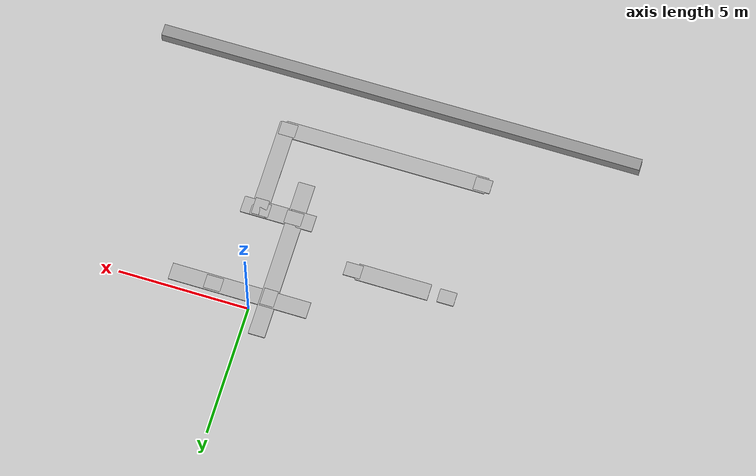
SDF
<sdf version="1.7">
 <world name="default">
  <model name="ground_plane">
   <static>1</static>
   <link name="link">
    <collision name="collision">
     <geometry><plane><normal>0 0 1</normal><size>100 100</size></plane></geometry>
     <surface>
      <contact><collide_bitmask>65535</collide_bitmask></contact>
      <friction><ode><mu>100</mu><mu2>50</mu2></ode></friction>
     </surface>
    </collision>
    <visual name="visual">
     <cast_shadows>0</cast_shadows>
     <geometry><plane><normal>0 0 1</normal><size>100 100</size></plane></geometry>
     <material>
      <script><uri>file://media/materials/scripts/gazebo.material</uri><name>Gazebo/Grey</name></script>
     </material>
    </visual>
   </link>
  </model>
  <model name="unit_box_wall_clone_0">
   <link name="unit_box::link">
    <inertial>
     <mass>1</mass>
     <inertia>
      <ixx>0.166667</ixx>
      <ixy>0</ixy>
      <ixz>0</ixz>
      <iyy>0.166667</iyy>
      <iyz>0</iyz>
      <izz>0.166667</izz>
     </inertia>
    </inertial>
    <visual name="visual">
     <geometry><box><size>0.446113 18.5982 1</size></box></geometry>
     <material>
      <script><name>Gazebo/Grey</name><uri>file://media/materials/scripts/gazebo.material</uri></script>
      <shader type="pixel"/>
     </material>
    </visual>
    <collision name="collision">
     <geometry><box><size>0.446113 18.5982 1</size></box></geometry>
     <surface>
      <friction>
       <ode><mu>1</mu><mu2>1</mu2><fdir1>0 0 0</fdir1><slip1>0</slip1><slip2>0</slip2></ode>
       <torsional>
        <coefficient>1</coefficient>
        <patch_radius>0</patch_radius>
        <surface_radius>0</surface_radius>
        <use_patch_radius>1</use_patch_radius>
        <ode><slip>0</slip></ode>
       </torsional>
      </friction>
      <bounce><restitution_coefficient>0</restitution_coefficient><threshold>1e+06</threshold></bounce>
      <contact>
       <collide_without_contact>0</collide_without_contact>
       <collide_without_contact_bitmask>1</collide_without_contact_bitmask>
       <collide_bitmask>1</collide_bitmask>
       <ode>
        <soft_cfm>0</soft_cfm>
        <soft_erp>0.2</soft_erp>
        <kp>1e+13</kp>
        <kd>1</kd>
        <max_vel>0.01</max_vel>
        <min_depth>0</min_depth>
       </ode>
       <bullet>
        <split_impulse>1</split_impulse>
        <split_impulse_penetration_threshold>-0.01</split_impulse_penetration_threshold>
        <soft_cfm>0</soft_cfm>
        <soft_erp>0.2</soft_erp>
        <kp>1e+13</kp>
        <kd>1</kd>
       </bullet>
      </contact>
     </surface>
    </collision>
   </link>
   <static>1</static>
   <allow_auto_disable>0</allow_auto_disable>
   <pose>-2.94746 -9.48662 0 0 0 -1.57124</pose>
  </model>
  <model name="wallx_clone_clone_clone">
   <link name="unit_box::link">
    <inertial>
     <mass>0.360824</mass>
     <inertia>
      <ixx>1.11244</ixx>
      <ixy>0</ixy>
      <ixz>0</ixz>
      <iyy>0.0643516</iyy>
      <iyz>0</iyz>
      <izz>1.11666</izz>
     </inertia>
    </inertial>
    <visual name="visual">
     <geometry><box><size>0.636041 5.31244 1</size></box></geometry>
     <material>
      <script>
       <uri>model://wallx/materials/scripts</uri>
       <uri>model://wallx/materials/textures/</uri>
       <name>sofaMat/Diffuse</name>
      </script>
      <shader type="pixel"/>
     </material>
    </visual>
    <collision name="collision">
     <geometry><box><size>0.636041 5.31244 1</size></box></geometry>
     <surface>
      <friction>
       <ode><mu>1</mu><mu2>1</mu2><fdir1>0 0 0</fdir1><slip1>0</slip1><slip2>0</slip2></ode>
       <torsional>
        <coefficient>1</coefficient>
        <patch_radius>0</patch_radius>
        <surface_radius>0</surface_radius>
        <use_patch_radius>1</use_patch_radius>
        <ode><slip>0</slip></ode>
       </torsional>
      </friction>
      <bounce><restitution_coefficient>0</restitution_coefficient><threshold>1e+06</threshold></bounce>
      <contact>
       <collide_without_contact>0</collide_without_contact>
       <collide_without_contact_bitmask>1</collide_without_contact_bitmask>
       <collide_bitmask>1</collide_bitmask>
       <ode>
        <soft_cfm>0</soft_cfm>
        <soft_erp>0.2</soft_erp>
        <kp>1e+13</kp>
        <kd>1</kd>
        <max_vel>0.01</max_vel>
        <min_depth>0</min_depth>
       </ode>
       <bullet>
        <split_impulse>1</split_impulse>
        <split_impulse_penetration_threshold>-0.01</split_impulse_penetration_threshold>
        <soft_cfm>0</soft_cfm>
        <soft_erp>0.2</soft_erp>
        <kp>1e+13</kp>
        <kd>1</kd>
       </bullet>
      </contact>
     </surface>
    </collision>
   </link>
   <static>1</static>
   <allow_auto_disable>0</allow_auto_disable>
   <pose>0.534764 -0.574694 -0.470978 0 0 -1.57156</pose>
  </model>
  <model name="wallx_clone_0_clone_clone">
   <link name="unit_box::link">
    <inertial>
     <mass>0.360824</mass>
     <inertia>
      <ixx>1.11244</ixx>
      <ixy>0</ixy>
      <ixz>0</ixz>
      <iyy>0.0643516</iyy>
      <iyz>0</iyz>
      <izz>1.11666</izz>
     </inertia>
    </inertial>
    <visual name="visual">
     <geometry><box><size>0.63604 6.20586 1</size></box></geometry>
     <material>
      <script>
       <uri>model://wallx/materials/scripts</uri>
       <uri>model://wallx/materials/textures/</uri>
       <name>sofaMat/Diffuse</name>
      </script>
      <shader type="pixel"/>
     </material>
    </visual>
    <collision name="collision">
     <geometry><box><size>0.63604 6.20586 1</size></box></geometry>
     <surface>
      <friction>
       <ode><mu>1</mu><mu2>1</mu2><fdir1>0 0 0</fdir1><slip1>0</slip1><slip2>0</slip2></ode>
       <torsional>
        <coefficient>1</coefficient>
        <patch_radius>0</patch_radius>
        <surface_radius>0</surface_radius>
        <use_patch_radius>1</use_patch_radius>
        <ode><slip>0</slip></ode>
       </torsional>
      </friction>
      <bounce><restitution_coefficient>0</restitution_coefficient><threshold>1e+06</threshold></bounce>
      <contact>
       <collide_without_contact>0</collide_without_contact>
       <collide_without_contact_bitmask>1</collide_without_contact_bitmask>
       <collide_bitmask>1</collide_bitmask>
       <ode>
        <soft_cfm>0</soft_cfm>
        <soft_erp>0.2</soft_erp>
        <kp>1e+13</kp>
        <kd>1</kd>
        <max_vel>0.01</max_vel>
        <min_depth>0</min_depth>
       </ode>
       <bullet>
        <split_impulse>1</split_impulse>
        <split_impulse_penetration_threshold>-0.01</split_impulse_penetration_threshold>
        <soft_cfm>0</soft_cfm>
        <soft_erp>0.2</soft_erp>
        <kp>1e+13</kp>
        <kd>1</kd>
       </bullet>
      </contact>
     </surface>
    </collision>
   </link>
   <static>1</static>
   <allow_auto_disable>0</allow_auto_disable>
   <pose>-0.586172 -2.19734 -0.470978 0 -0 0</pose>
  </model>
  <model name="wallx_clone_clone_clone_clone">
   <link name="unit_box::link">
    <inertial>
     <mass>0.360824</mass>
     <inertia>
      <ixx>1.11244</ixx>
      <ixy>0</ixy>
      <ixz>0</ixz>
      <iyy>0.0643516</iyy>
      <iyz>0</iyz>
      <izz>1.11666</izz>
     </inertia>
    </inertial>
    <visual name="visual">
     <geometry><box><size>0.636041 2.7749 1</size></box></geometry>
     <material>
      <script>
       <uri>model://wallx/materials/scripts</uri>
       <uri>model://wallx/materials/textures/</uri>
       <name>sofaMat/Diffuse</name>
      </script>
      <shader type="pixel"/>
     </material>
    </visual>
    <collision name="collision">
     <geometry><box><size>0.636041 2.7749 1</size></box></geometry>
     <surface>
      <friction>
       <ode><mu>1</mu><mu2>1</mu2><fdir1>0 0 0</fdir1><slip1>0</slip1><slip2>0</slip2></ode>
       <torsional>
        <coefficient>1</coefficient>
        <patch_radius>0</patch_radius>
        <surface_radius>0</surface_radius>
        <use_patch_radius>1</use_patch_radius>
        <ode><slip>0</slip></ode>
       </torsional>
      </friction>
      <bounce><restitution_coefficient>0</restitution_coefficient><threshold>1e+06</threshold></bounce>
      <contact>
       <collide_without_contact>0</collide_without_contact>
       <collide_without_contact_bitmask>1</collide_without_contact_bitmask>
       <collide_bitmask>1</collide_bitmask>
       <ode>
        <soft_cfm>0</soft_cfm>
        <soft_erp>0.2</soft_erp>
        <kp>1e+13</kp>
        <kd>1</kd>
        <max_vel>0.01</max_vel>
        <min_depth>0</min_depth>
       </ode>
       <bullet>
        <split_impulse>1</split_impulse>
        <split_impulse_penetration_threshold>-0.01</split_impulse_penetration_threshold>
        <soft_cfm>0</soft_cfm>
        <soft_erp>0.2</soft_erp>
        <kp>1e+13</kp>
        <kd>1</kd>
       </bullet>
      </contact>
     </surface>
    </collision>
   </link>
   <static>1</static>
   <allow_auto_disable>0</allow_auto_disable>
   <pose>0.07415 -3.86935 -0.470978 0 0 -1.57156</pose>
  </model>
  <model name="wallx_clone_0_clone_clone_clone">
   <link name="unit_box::link">
    <inertial>
     <mass>0.360824</mass>
     <inertia>
      <ixx>1.11244</ixx>
      <ixy>0</ixy>
      <ixz>0</ixz>
      <iyy>0.0643516</iyy>
      <iyz>0</iyz>
      <izz>1.11666</izz>
     </inertia>
    </inertial>
    <visual name="visual">
     <geometry><box><size>0.63604 3.87548 1</size></box></geometry>
     <material>
      <script>
       <uri>model://wallx/materials/scripts</uri>
       <uri>model://wallx/materials/textures/</uri>
       <name>sofaMat/Diffuse</name>
      </script>
      <shader type="pixel"/>
     </material>
    </visual>
    <collision name="collision">
     <geometry><box><size>0.63604 3.87548 1</size></box></geometry>
     <surface>
      <friction>
       <ode><mu>1</mu><mu2>1</mu2><fdir1>0 0 0</fdir1><slip1>0</slip1><slip2>0</slip2></ode>
       <torsional>
        <coefficient>1</coefficient>
        <patch_radius>0</patch_radius>
        <surface_radius>0</surface_radius>
        <use_patch_radius>1</use_patch_radius>
        <ode><slip>0</slip></ode>
       </torsional>
      </friction>
      <bounce><restitution_coefficient>0</restitution_coefficient><threshold>1e+06</threshold></bounce>
      <contact>
       <collide_without_contact>0</collide_without_contact>
       <collide_without_contact_bitmask>1</collide_without_contact_bitmask>
       <collide_bitmask>1</collide_bitmask>
       <ode>
        <soft_cfm>0</soft_cfm>
        <soft_erp>0.2</soft_erp>
        <kp>1e+13</kp>
        <kd>1</kd>
        <max_vel>0.01</max_vel>
        <min_depth>0</min_depth>
       </ode>
       <bullet>
        <split_impulse>1</split_impulse>
        <split_impulse_penetration_threshold>-0.01</split_impulse_penetration_threshold>
        <soft_cfm>0</soft_cfm>
        <soft_erp>0.2</soft_erp>
        <kp>1e+13</kp>
        <kd>1</kd>
       </bullet>
      </contact>
     </surface>
    </collision>
   </link>
   <static>1</static>
   <allow_auto_disable>0</allow_auto_disable>
   <pose>0.786646 -5.4928 -0.470978 0 -0 0</pose>
  </model>
  <model name="wallx_clone_clone_0">
   <link name="unit_box::link">
    <inertial>
     <mass>0.360824</mass>
     <inertia>
      <ixx>1.11244</ixx>
      <ixy>0</ixy>
      <ixz>0</ixz>
      <iyy>0.0643516</iyy>
      <iyz>0</iyz>
      <izz>1.11666</izz>
     </inertia>
    </inertial>
    <visual name="visual">
     <geometry><box><size>0.636041 7.85359 1</size></box></geometry>
     <material>
      <script>
       <uri>model://wallx/materials/scripts</uri>
       <uri>model://wallx/materials/textures/</uri>
       <name>sofaMat/Diffuse</name>
      </script>
      <shader type="pixel"/>
     </material>
    </visual>
    <collision name="collision">
     <geometry><box><size>0.636041 7.85359 1</size></box></geometry>
     <surface>
      <friction>
       <ode><mu>1</mu><mu2>1</mu2><fdir1>0 0 0</fdir1><slip1>0</slip1><slip2>0</slip2></ode>
       <torsional>
        <coefficient>1</coefficient>
        <patch_radius>0</patch_radius>
        <surface_radius>0</surface_radius>
        <use_patch_radius>1</use_patch_radius>
        <ode><slip>0</slip></ode>
       </torsional>
      </friction>
      <bounce><restitution_coefficient>0</restitution_coefficient><threshold>1e+06</threshold></bounce>
      <contact>
       <collide_without_contact>0</collide_without_contact>
       <collide_without_contact_bitmask>1</collide_without_contact_bitmask>
       <collide_bitmask>1</collide_bitmask>
       <ode>
        <soft_cfm>0</soft_cfm>
        <soft_erp>0.2</soft_erp>
        <kp>1e+13</kp>
        <kd>1</kd>
        <max_vel>0.01</max_vel>
        <min_depth>0</min_depth>
       </ode>
       <bullet>
        <split_impulse>1</split_impulse>
        <split_impulse_penetration_threshold>-0.01</split_impulse_penetration_threshold>
        <soft_cfm>0</soft_cfm>
        <soft_erp>0.2</soft_erp>
        <kp>1e+13</kp>
        <kd>1</kd>
       </bullet>
      </contact>
     </surface>
    </collision>
   </link>
   <static>1</static>
   <allow_auto_disable>0</allow_auto_disable>
   <pose>-3.05633 -7.18123 -0.470978 0 0 -1.57156</pose>
  </model>
  <model name="wallx_clone_clone_clone_clone_0">
   <link name="unit_box::link">
    <inertial>
     <mass>0.360824</mass>
     <inertia>
      <ixx>1.11244</ixx>
      <ixy>0</ixy>
      <ixz>0</ixz>
      <iyy>0.0643516</iyy>
      <iyz>0</iyz>
      <izz>1.11666</izz>
     </inertia>
    </inertial>
    <visual name="visual">
     <geometry><box><size>0.636041 2.77489 1</size></box></geometry>
     <material>
      <script>
       <uri>model://wallx/materials/scripts</uri>
       <uri>model://wallx/materials/textures/</uri>
       <name>sofaMat/Diffuse</name>
      </script>
      <shader type="pixel"/>
     </material>
    </visual>
    <collision name="collision">
     <geometry><box><size>0.636041 2.77489 1</size></box></geometry>
     <surface>
      <friction>
       <ode><mu>1</mu><mu2>1</mu2><fdir1>0 0 0</fdir1><slip1>0</slip1><slip2>0</slip2></ode>
       <torsional>
        <coefficient>1</coefficient>
        <patch_radius>0</patch_radius>
        <surface_radius>0</surface_radius>
        <use_patch_radius>1</use_patch_radius>
        <ode><slip>0</slip></ode>
       </torsional>
      </friction>
      <bounce><restitution_coefficient>0</restitution_coefficient><threshold>1e+06</threshold></bounce>
      <contact>
       <collide_without_contact>0</collide_without_contact>
       <collide_without_contact_bitmask>1</collide_without_contact_bitmask>
       <collide_bitmask>1</collide_bitmask>
       <ode>
        <soft_cfm>0</soft_cfm>
        <soft_erp>0.2</soft_erp>
        <kp>1e+13</kp>
        <kd>1</kd>
        <max_vel>0.01</max_vel>
        <min_depth>0</min_depth>
       </ode>
       <bullet>
        <split_impulse>1</split_impulse>
        <split_impulse_penetration_threshold>-0.01</split_impulse_penetration_threshold>
        <soft_cfm>0</soft_cfm>
        <soft_erp>0.2</soft_erp>
        <kp>1e+13</kp>
        <kd>1</kd>
       </bullet>
      </contact>
     </surface>
    </collision>
   </link>
   <static>1</static>
   <allow_auto_disable>0</allow_auto_disable>
   <pose>-4.7728 -2.55069 -0.470978 0 0 -1.57156</pose>
  </model>
  <model name="wally_clone_2">
   <link name="unit_box::link">
    <inertial>
     <mass>0.360824</mass>
     <inertia>
      <ixx>1.11244</ixx>
      <ixy>0</ixy>
      <ixz>0</ixz>
      <iyy>0.0643516</iyy>
      <iyz>0</iyz>
      <izz>1.11666</izz>
     </inertia>
    </inertial>
    <visual name="visual">
     <geometry><box><size>0.526279 0.641561 0.121798</size></box></geometry>
     <material>
      <script>
       <uri>model://wally/materials/scripts</uri>
       <uri>model://wally/materials/textures/</uri>
       <name>sofaMa/Diffuse</name>
      </script>
      <shader type="pixel"/>
     </material>
    </visual>
    <collision name="collision">
     <geometry><box><size>0.526279 0.641561 0.121798</size></box></geometry>
     <surface>
      <friction>
       <ode><mu>1</mu><mu2>1</mu2><fdir1>0 0 0</fdir1><slip1>0</slip1><slip2>0</slip2></ode>
       <torsional>
        <coefficient>1</coefficient>
        <patch_radius>0</patch_radius>
        <surface_radius>0</surface_radius>
        <use_patch_radius>1</use_patch_radius>
        <ode><slip>0</slip></ode>
       </torsional>
      </friction>
      <bounce><restitution_coefficient>0</restitution_coefficient><threshold>1e+06</threshold></bounce>
      <contact>
       <collide_without_contact>0</collide_without_contact>
       <collide_without_contact_bitmask>1</collide_without_contact_bitmask>
       <collide_bitmask>1</collide_bitmask>
       <ode>
        <soft_cfm>0</soft_cfm>
        <soft_erp>0.2</soft_erp>
        <kp>1e+13</kp>
        <kd>1</kd>
        <max_vel>0.01</max_vel>
        <min_depth>0</min_depth>
       </ode>
       <bullet>
        <split_impulse>1</split_impulse>
        <split_impulse_penetration_threshold>-0.01</split_impulse_penetration_threshold>
        <soft_cfm>0</soft_cfm>
        <soft_erp>0.2</soft_erp>
        <kp>1e+13</kp>
        <kd>1</kd>
       </bullet>
      </contact>
     </surface>
    </collision>
   </link>
   <static>1</static>
   <allow_auto_disable>0</allow_auto_disable>
   <pose>-0.589298 -0.630189 -0.031686 0 -0 0</pose>
  </model>
  <model name="wally_clone_3">
   <link name="unit_box::link">
    <inertial>
     <mass>0.360824</mass>
     <inertia>
      <ixx>1.11244</ixx>
      <ixy>0</ixy>
      <ixz>0</ixz>
      <iyy>0.0643516</iyy>
      <iyz>0</iyz>
      <izz>1.11666</izz>
     </inertia>
    </inertial>
    <visual name="visual">
     <geometry><box><size>0.526279 0.641561 0.121798</size></box></geometry>
     <material>
      <script>
       <uri>model://wally/materials/scripts</uri>
       <uri>model://wally/materials/textures/</uri>
       <name>sofaMa/Diffuse</name>
      </script>
      <shader type="pixel"/>
     </material>
    </visual>
    <collision name="collision">
     <geometry><box><size>0.526279 0.641561 0.121798</size></box></geometry>
     <surface>
      <friction>
       <ode><mu>1</mu><mu2>1</mu2><fdir1>0 0 0</fdir1><slip1>0</slip1><slip2>0</slip2></ode>
       <torsional>
        <coefficient>1</coefficient>
        <patch_radius>0</patch_radius>
        <surface_radius>0</surface_radius>
        <use_patch_radius>1</use_patch_radius>
        <ode><slip>0</slip></ode>
       </torsional>
      </friction>
      <bounce><restitution_coefficient>0</restitution_coefficient><threshold>1e+06</threshold></bounce>
      <contact>
       <collide_without_contact>0</collide_without_contact>
       <collide_without_contact_bitmask>1</collide_without_contact_bitmask>
       <collide_bitmask>1</collide_bitmask>
       <ode>
        <soft_cfm>0</soft_cfm>
        <soft_erp>0.2</soft_erp>
        <kp>1e+13</kp>
        <kd>1</kd>
        <max_vel>0.01</max_vel>
        <min_depth>0</min_depth>
       </ode>
       <bullet>
        <split_impulse>1</split_impulse>
        <split_impulse_penetration_threshold>-0.01</split_impulse_penetration_threshold>
        <soft_cfm>0</soft_cfm>
        <soft_erp>0.2</soft_erp>
        <kp>1e+13</kp>
        <kd>1</kd>
       </bullet>
      </contact>
     </surface>
    </collision>
   </link>
   <static>1</static>
   <allow_auto_disable>0</allow_auto_disable>
   <pose>0.7876 -3.93352 -0.031686 0 -0 0</pose>
  </model>
  <model name="wally_clone_4_clone_1">
   <link name="unit_box::link">
    <inertial>
     <mass>0.360824</mass>
     <inertia>
      <ixx>1.11244</ixx>
      <ixy>0</ixy>
      <ixz>0</ixz>
      <iyy>0.0643516</iyy>
      <iyz>0</iyz>
      <izz>1.11666</izz>
     </inertia>
    </inertial>
    <visual name="visual">
     <geometry><box><size>0.526279 0.641561 0.121798</size></box></geometry>
     <material>
      <script>
       <uri>model://wally/materials/scripts</uri>
       <uri>model://wally/materials/textures/</uri>
       <name>sofaMa/Diffuse</name>
      </script>
      <shader type="pixel"/>
     </material>
    </visual>
    <collision name="collision">
     <geometry><box><size>0.526279 0.641561 0.121798</size></box></geometry>
     <surface>
      <friction>
       <ode><mu>1</mu><mu2>1</mu2><fdir1>0 0 0</fdir1><slip1>0</slip1><slip2>0</slip2></ode>
       <torsional>
        <coefficient>1</coefficient>
        <patch_radius>0</patch_radius>
        <surface_radius>0</surface_radius>
        <use_patch_radius>1</use_patch_radius>
        <ode><slip>0</slip></ode>
       </torsional>
      </friction>
      <bounce><restitution_coefficient>0</restitution_coefficient><threshold>1e+06</threshold></bounce>
      <contact>
       <collide_without_contact>0</collide_without_contact>
       <collide_without_contact_bitmask>1</collide_without_contact_bitmask>
       <collide_bitmask>1</collide_bitmask>
       <ode>
        <soft_cfm>0</soft_cfm>
        <soft_erp>0.2</soft_erp>
        <kp>1e+13</kp>
        <kd>1</kd>
        <max_vel>0.01</max_vel>
        <min_depth>0</min_depth>
       </ode>
       <bullet>
        <split_impulse>1</split_impulse>
        <split_impulse_penetration_threshold>-0.01</split_impulse_penetration_threshold>
        <soft_cfm>0</soft_cfm>
        <soft_erp>0.2</soft_erp>
        <kp>1e+13</kp>
        <kd>1</kd>
       </bullet>
      </contact>
     </surface>
    </collision>
   </link>
   <static>1</static>
   <allow_auto_disable>0</allow_auto_disable>
   <pose>-3.23228 -2.55747 -0.031686 0 0 -1.56745</pose>
  </model>
  <model name="wally_clone_4_clone_2">
   <link name="unit_box::link">
    <inertial>
     <mass>0.360824</mass>
     <inertia>
      <ixx>1.11244</ixx>
      <ixy>0</ixy>
      <ixz>0</ixz>
      <iyy>0.0643516</iyy>
      <iyz>0</iyz>
      <izz>1.11666</izz>
     </inertia>
    </inertial>
    <visual name="visual">
     <geometry><box><size>0.526279 0.641561 0.121798</size></box></geometry>
     <material>
      <script>
       <uri>model://wally/materials/scripts</uri>
       <uri>model://wally/materials/textures/</uri>
       <name>sofaMa/Diffuse</name>
      </script>
      <shader type="pixel"/>
     </material>
    </visual>
    <collision name="collision">
     <geometry><box><size>0.526279 0.641561 0.121798</size></box></geometry>
     <surface>
      <friction>
       <ode><mu>1</mu><mu2>1</mu2><fdir1>0 0 0</fdir1><slip1>0</slip1><slip2>0</slip2></ode>
       <torsional>
        <coefficient>1</coefficient>
        <patch_radius>0</patch_radius>
        <surface_radius>0</surface_radius>
        <use_patch_radius>1</use_patch_radius>
        <ode><slip>0</slip></ode>
       </torsional>
      </friction>
      <bounce><restitution_coefficient>0</restitution_coefficient><threshold>1e+06</threshold></bounce>
      <contact>
       <collide_without_contact>0</collide_without_contact>
       <collide_without_contact_bitmask>1</collide_without_contact_bitmask>
       <collide_bitmask>1</collide_bitmask>
       <ode>
        <soft_cfm>0</soft_cfm>
        <soft_erp>0.2</soft_erp>
        <kp>1e+13</kp>
        <kd>1</kd>
        <max_vel>0.01</max_vel>
        <min_depth>0</min_depth>
       </ode>
       <bullet>
        <split_impulse>1</split_impulse>
        <split_impulse_penetration_threshold>-0.01</split_impulse_penetration_threshold>
        <soft_cfm>0</soft_cfm>
        <soft_erp>0.2</soft_erp>
        <kp>1e+13</kp>
        <kd>1</kd>
       </bullet>
      </contact>
     </surface>
    </collision>
   </link>
   <static>1</static>
   <allow_auto_disable>0</allow_auto_disable>
   <pose>-0.534996 -3.87307 -0.031686 0 0 -1.56745</pose>
  </model>
  <model name="wally_clone_4_clone_3">
   <link name="unit_box::link">
    <inertial>
     <mass>0.360824</mass>
     <inertia>
      <ixx>1.11244</ixx>
      <ixy>0</ixy>
      <ixz>0</ixz>
      <iyy>0.0643516</iyy>
      <iyz>0</iyz>
      <izz>1.11666</izz>
     </inertia>
    </inertial>
    <visual name="visual">
     <geometry><box><size>0.526279 0.641561 0.121798</size></box></geometry>
     <material>
      <script>
       <uri>model://wally/materials/scripts</uri>
       <uri>model://wally/materials/textures/</uri>
       <name>sofaMa/Diffuse</name>
      </script>
      <shader type="pixel"/>
     </material>
    </visual>
    <collision name="collision">
     <geometry><box><size>0.526279 0.641561 0.121798</size></box></geometry>
     <surface>
      <friction>
       <ode><mu>1</mu><mu2>1</mu2><fdir1>0 0 0</fdir1><slip1>0</slip1><slip2>0</slip2></ode>
       <torsional>
        <coefficient>1</coefficient>
        <patch_radius>0</patch_radius>
        <surface_radius>0</surface_radius>
        <use_patch_radius>1</use_patch_radius>
        <ode><slip>0</slip></ode>
       </torsional>
      </friction>
      <bounce><restitution_coefficient>0</restitution_coefficient><threshold>1e+06</threshold></bounce>
      <contact>
       <collide_without_contact>0</collide_without_contact>
       <collide_without_contact_bitmask>1</collide_without_contact_bitmask>
       <collide_bitmask>1</collide_bitmask>
       <ode>
        <soft_cfm>0</soft_cfm>
        <soft_erp>0.2</soft_erp>
        <kp>1e+13</kp>
        <kd>1</kd>
        <max_vel>0.01</max_vel>
        <min_depth>0</min_depth>
       </ode>
       <bullet>
        <split_impulse>1</split_impulse>
        <split_impulse_penetration_threshold>-0.01</split_impulse_penetration_threshold>
        <soft_cfm>0</soft_cfm>
        <soft_erp>0.2</soft_erp>
        <kp>1e+13</kp>
        <kd>1</kd>
       </bullet>
      </contact>
     </surface>
    </collision>
   </link>
   <static>1</static>
   <allow_auto_disable>0</allow_auto_disable>
   <pose>0.728855 -3.86733 -0.031686 0 0 -1.56745</pose>
  </model>
  <model name="wally_clone_4_clone_4">
   <link name="unit_box::link">
    <inertial>
     <mass>0.360824</mass>
     <inertia>
      <ixx>1.11244</ixx>
      <ixy>0</ixy>
      <ixz>0</ixz>
      <iyy>0.0643516</iyy>
      <iyz>0</iyz>
      <izz>1.11666</izz>
     </inertia>
    </inertial>
    <visual name="visual">
     <geometry><box><size>0.526279 0.641561 0.121798</size></box></geometry>
     <material>
      <script>
       <uri>model://wally/materials/scripts</uri>
       <uri>model://wally/materials/textures/</uri>
       <name>sofaMa/Diffuse</name>
      </script>
      <shader type="pixel"/>
     </material>
    </visual>
    <collision name="collision">
     <geometry><box><size>0.526279 0.641561 0.121798</size></box></geometry>
     <surface>
      <friction>
       <ode><mu>1</mu><mu2>1</mu2><fdir1>0 0 0</fdir1><slip1>0</slip1><slip2>0</slip2></ode>
       <torsional>
        <coefficient>1</coefficient>
        <patch_radius>0</patch_radius>
        <surface_radius>0</surface_radius>
        <use_patch_radius>1</use_patch_radius>
        <ode><slip>0</slip></ode>
       </torsional>
      </friction>
      <bounce><restitution_coefficient>0</restitution_coefficient><threshold>1e+06</threshold></bounce>
      <contact>
       <collide_without_contact>0</collide_without_contact>
       <collide_without_contact_bitmask>1</collide_without_contact_bitmask>
       <collide_bitmask>1</collide_bitmask>
       <ode>
        <soft_cfm>0</soft_cfm>
        <soft_erp>0.2</soft_erp>
        <kp>1e+13</kp>
        <kd>1</kd>
        <max_vel>0.01</max_vel>
        <min_depth>0</min_depth>
       </ode>
       <bullet>
        <split_impulse>1</split_impulse>
        <split_impulse_penetration_threshold>-0.01</split_impulse_penetration_threshold>
        <soft_cfm>0</soft_cfm>
        <soft_erp>0.2</soft_erp>
        <kp>1e+13</kp>
        <kd>1</kd>
       </bullet>
      </contact>
     </surface>
    </collision>
   </link>
   <static>1</static>
   <allow_auto_disable>0</allow_auto_disable>
   <pose>0.729197 -7.18132 -0.031686 0 0 -1.56745</pose>
  </model>
  <model name="wally_clone_4_clone_5">
   <link name="unit_box::link">
    <inertial>
     <mass>0.360824</mass>
     <inertia>
      <ixx>1.11244</ixx>
      <ixy>0</ixy>
      <ixz>0</ixz>
      <iyy>0.0643516</iyy>
      <iyz>0</iyz>
      <izz>1.11666</izz>
     </inertia>
    </inertial>
    <visual name="visual">
     <geometry><box><size>0.526279 0.641561 0.121798</size></box></geometry>
     <material>
      <script>
       <uri>model://wally/materials/scripts</uri>
       <uri>model://wally/materials/textures/</uri>
       <name>sofaMa/Diffuse</name>
      </script>
      <shader type="pixel"/>
     </material>
    </visual>
    <collision name="collision">
     <geometry><box><size>0.526279 0.641561 0.121798</size></box></geometry>
     <surface>
      <friction>
       <ode><mu>1</mu><mu2>1</mu2><fdir1>0 0 0</fdir1><slip1>0</slip1><slip2>0</slip2></ode>
       <torsional>
        <coefficient>1</coefficient>
        <patch_radius>0</patch_radius>
        <surface_radius>0</surface_radius>
        <use_patch_radius>1</use_patch_radius>
        <ode><slip>0</slip></ode>
       </torsional>
      </friction>
      <bounce><restitution_coefficient>0</restitution_coefficient><threshold>1e+06</threshold></bounce>
      <contact>
       <collide_without_contact>0</collide_without_contact>
       <collide_without_contact_bitmask>1</collide_without_contact_bitmask>
       <collide_bitmask>1</collide_bitmask>
       <ode>
        <soft_cfm>0</soft_cfm>
        <soft_erp>0.2</soft_erp>
        <kp>1e+13</kp>
        <kd>1</kd>
        <max_vel>0.01</max_vel>
        <min_depth>0</min_depth>
       </ode>
       <bullet>
        <split_impulse>1</split_impulse>
        <split_impulse_penetration_threshold>-0.01</split_impulse_penetration_threshold>
        <soft_cfm>0</soft_cfm>
        <soft_erp>0.2</soft_erp>
        <kp>1e+13</kp>
        <kd>1</kd>
       </bullet>
      </contact>
     </surface>
    </collision>
   </link>
   <static>1</static>
   <allow_auto_disable>0</allow_auto_disable>
   <pose>1.53279 -0.576511 -0.031686 0 0 -1.56745</pose>
  </model>
  <model name="wally_clone_4_clone_6">
   <link name="unit_box::link">
    <inertial>
     <mass>0.360824</mass>
     <inertia>
      <ixx>1.11244</ixx>
      <ixy>0</ixy>
      <ixz>0</ixz>
      <iyy>0.0643516</iyy>
      <iyz>0</iyz>
      <izz>1.11666</izz>
     </inertia>
    </inertial>
    <visual name="visual">
     <geometry><box><size>0.526279 0.641561 0.121798</size></box></geometry>
     <material>
      <script>
       <uri>model://wally/materials/scripts</uri>
       <uri>model://wally/materials/textures/</uri>
       <name>sofaMa/Diffuse</name>
      </script>
      <shader type="pixel"/>
     </material>
    </visual>
    <collision name="collision">
     <geometry><box><size>0.526279 0.641561 0.121798</size></box></geometry>
     <surface>
      <friction>
       <ode><mu>1</mu><mu2>1</mu2><fdir1>0 0 0</fdir1><slip1>0</slip1><slip2>0</slip2></ode>
       <torsional>
        <coefficient>1</coefficient>
        <patch_radius>0</patch_radius>
        <surface_radius>0</surface_radius>
        <use_patch_radius>1</use_patch_radius>
        <ode><slip>0</slip></ode>
       </torsional>
      </friction>
      <bounce><restitution_coefficient>0</restitution_coefficient><threshold>1e+06</threshold></bounce>
      <contact>
       <collide_without_contact>0</collide_without_contact>
       <collide_without_contact_bitmask>1</collide_without_contact_bitmask>
       <collide_bitmask>1</collide_bitmask>
       <ode>
        <soft_cfm>0</soft_cfm>
        <soft_erp>0.2</soft_erp>
        <kp>1e+13</kp>
        <kd>1</kd>
        <max_vel>0.01</max_vel>
        <min_depth>0</min_depth>
       </ode>
       <bullet>
        <split_impulse>1</split_impulse>
        <split_impulse_penetration_threshold>-0.01</split_impulse_penetration_threshold>
        <soft_cfm>0</soft_cfm>
        <soft_erp>0.2</soft_erp>
        <kp>1e+13</kp>
        <kd>1</kd>
       </bullet>
      </contact>
     </surface>
    </collision>
   </link>
   <static>1</static>
   <allow_auto_disable>0</allow_auto_disable>
   <pose>-6.83993 -7.18141 -0.031686 0 0 -1.56745</pose>
  </model>
  <model name="wally_clone_4_clone_7">
   <link name="unit_box::link">
    <inertial>
     <mass>0.360824</mass>
     <inertia>
      <ixx>1.11244</ixx>
      <ixy>0</ixy>
      <ixz>0</ixz>
      <iyy>0.0643516</iyy>
      <iyz>0</iyz>
      <izz>1.11666</izz>
     </inertia>
    </inertial>
    <visual name="visual">
     <geometry><box><size>0.526279 0.641561 0.121798</size></box></geometry>
     <material>
      <script>
       <uri>model://wally/materials/scripts</uri>
       <uri>model://wally/materials/textures/</uri>
       <name>sofaMa/Diffuse</name>
      </script>
      <shader type="pixel"/>
     </material>
    </visual>
    <collision name="collision">
     <geometry><box><size>0.526279 0.641561 0.121798</size></box></geometry>
     <surface>
      <friction>
       <ode><mu>1</mu><mu2>1</mu2><fdir1>0 0 0</fdir1><slip1>0</slip1><slip2>0</slip2></ode>
       <torsional>
        <coefficient>1</coefficient>
        <patch_radius>0</patch_radius>
        <surface_radius>0</surface_radius>
        <use_patch_radius>1</use_patch_radius>
        <ode><slip>0</slip></ode>
       </torsional>
      </friction>
      <bounce><restitution_coefficient>0</restitution_coefficient><threshold>1e+06</threshold></bounce>
      <contact>
       <collide_without_contact>0</collide_without_contact>
       <collide_without_contact_bitmask>1</collide_without_contact_bitmask>
       <collide_bitmask>1</collide_bitmask>
       <ode>
        <soft_cfm>0</soft_cfm>
        <soft_erp>0.2</soft_erp>
        <kp>1e+13</kp>
        <kd>1</kd>
        <max_vel>0.01</max_vel>
        <min_depth>0</min_depth>
       </ode>
       <bullet>
        <split_impulse>1</split_impulse>
        <split_impulse_penetration_threshold>-0.01</split_impulse_penetration_threshold>
        <soft_cfm>0</soft_cfm>
        <soft_erp>0.2</soft_erp>
        <kp>1e+13</kp>
        <kd>1</kd>
       </bullet>
      </contact>
     </surface>
    </collision>
   </link>
   <static>1</static>
   <allow_auto_disable>0</allow_auto_disable>
   <pose>-6.83043 -2.55183 -0.031686 0 0 -1.56745</pose>
  </model>
 </world>
</sdf>
